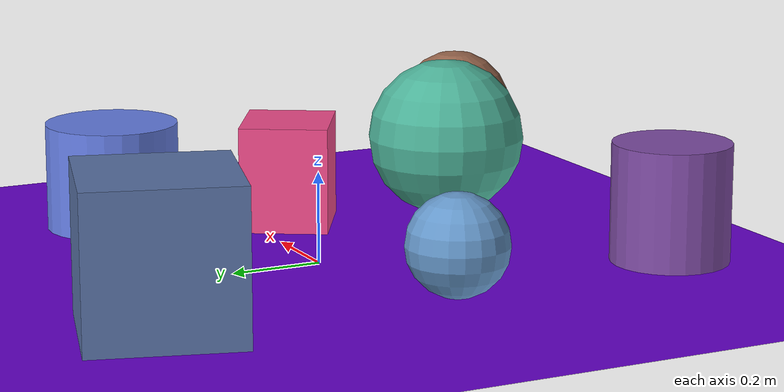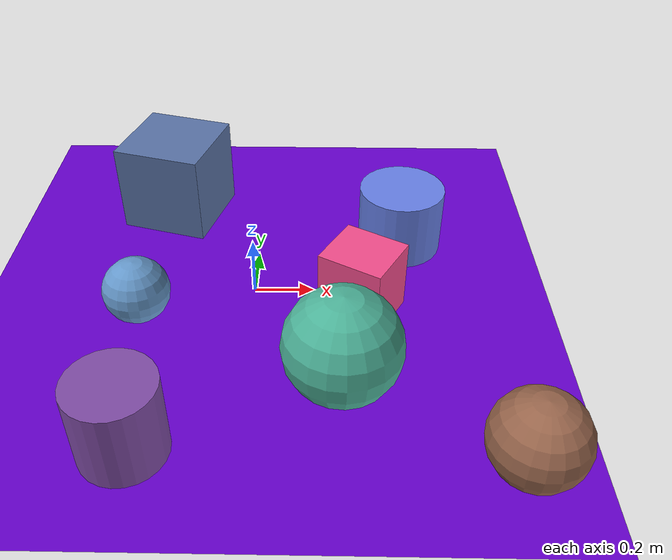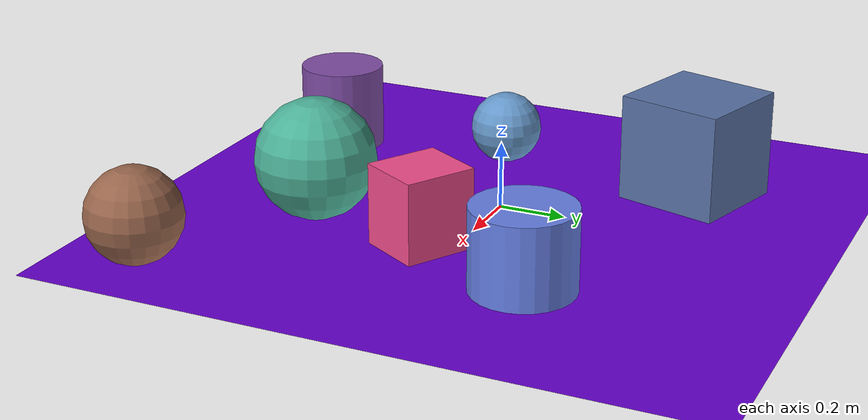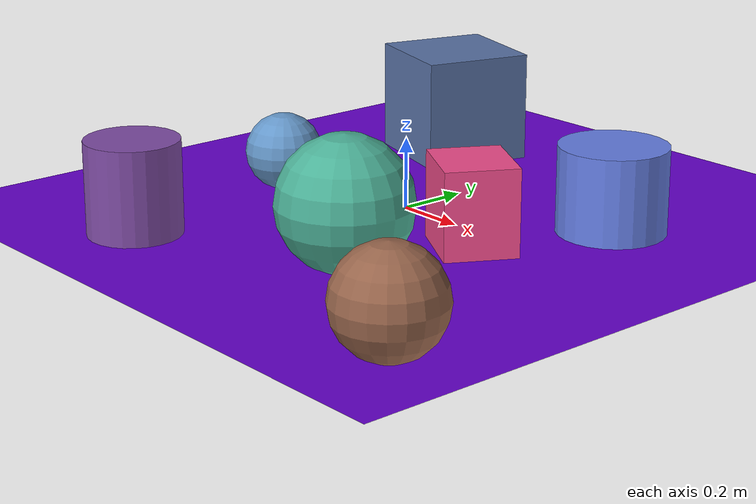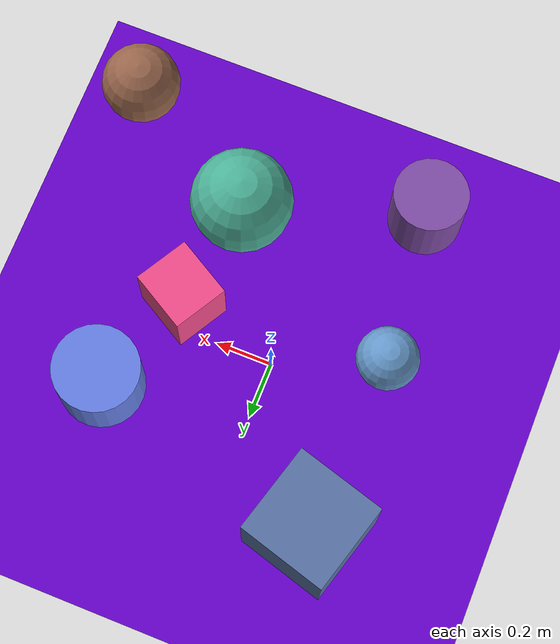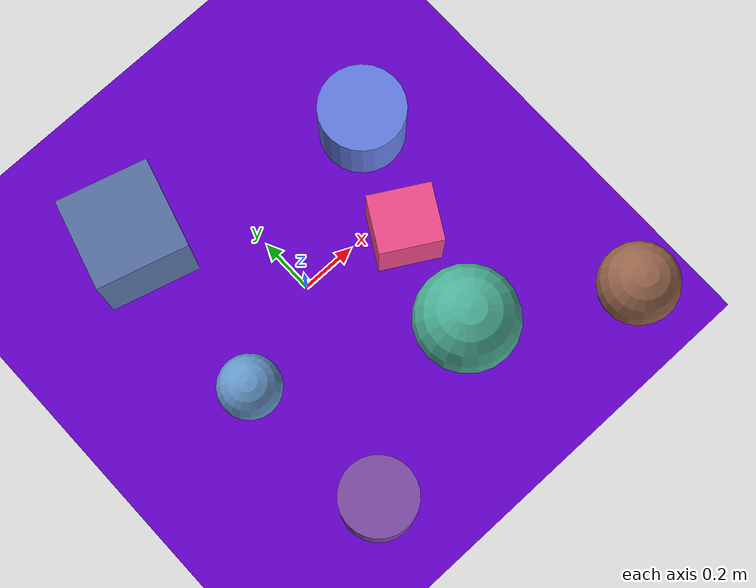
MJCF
<mujoco>
   <asset>
<texture type="skybox" builtin="gradient" rgb1="0.1 0.5 0.5" rgb2="0.7 0.1 0.9" width="256" height="256"/>
<texture name="flat_0" builtin="flat" rgb1="0.4 0.6 0.8" rgb2="0.4 0.6 0.8"  width="200" height="200"/>
<texture name="flat_1" builtin="flat" rgb1="0.4 0.5 0.9" rgb2="0.4 0.5 0.9"  width="200" height="200"/>
<texture name="checker_2" builtin="checker" rgb1="0.6 0.0 0.6" rgb2="0.1 0.9 0.7" width="200" height="200"/>
<texture name="gradient_3" builtin="gradient" rgb1="0.5 0.6 0.9" rgb2="0.5 0.0 0.4" width="200" height="200"/>
<texture name="checker_4" builtin="checker" rgb1="0.9 0.0 0.5" rgb2="1.0 0.6 0.6" width="200" height="200"/>
<texture name="flat_5" builtin="flat" rgb1="0.3 0.7 0.6" rgb2="0.3 0.7 0.6"  width="200" height="200"/>
<texture name="flat_6" builtin="flat" rgb1="0.6 0.4 0.3" rgb2="0.6 0.4 0.3"  width="200" height="200"/><material name="flat_0_mat" reflectance="0" texture="flat_0" texuniform="true"/>
<material name="flat_1_mat" reflectance="0" texture="flat_1" texuniform="true"/>
<material name="checker_2_mat" reflectance="0" texrepeat="9 9" texture="checker_2" texuniform="false" />
<material name="gradient_3_mat" reflectance="0" texture="gradient_3" texuniform="true"/>
<material name="checker_4_mat" reflectance="0" texrepeat="3 3" texture="checker_4" texuniform="false" />
<material name="flat_5_mat" reflectance="0" texture="flat_5" texuniform="true"/>
<material name="flat_6_mat" reflectance="0" texture="flat_6" texuniform="true"/>
   </asset>

   <worldbody>
      <light diffuse=".9 .9 .9" pos="0 0 3" dir="0 0 -1"/>
     <geom type="plane" size="1 1 0.1" rgba="0.4 0.0 0.8 1"/>
<geom type="sphere" pos="-0.37 -0.14 0.11" size="0.11 0.11 0.11" material="flat_0_mat" euler="0 0 70" />
<geom type="cylinder" pos="0.51 0.28 0.12" size="0.15 0.12 0.12" material="flat_1_mat" euler="0 0 34" />
<geom type="box" pos="-0.33 0.49 0.16" size="0.16 0.16 0.16" material="checker_2_mat" euler="0 0 74" />
<geom type="cylinder" pos="-0.31 -0.69 0.13" size="0.13 0.13 0.13" material="gradient_3_mat" euler="0 0 27" />
<geom type="box" pos="0.36 -0.09 0.12" size="0.1 0.11 0.12" material="checker_4_mat" euler="0 0 60" />
<geom type="sphere" pos="0.29 -0.46 0.18" size="0.18 0.18 0.18" material="flat_5_mat" euler="0 0 21" />
<geom type="sphere" pos="0.79 -0.75 0.14" size="0.14 0.14 0.14" material="flat_6_mat" euler="0 0 47" /><camera euler="60 0 180" fovy="60" name="camera1" pos="-0.2 -1.5 1"></camera>   </worldbody>
</mujoco>
